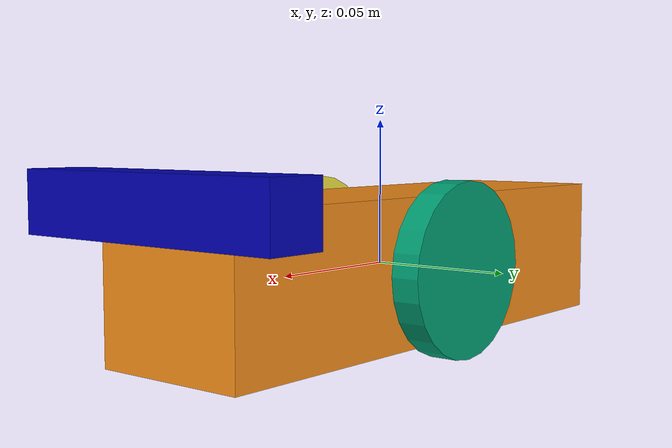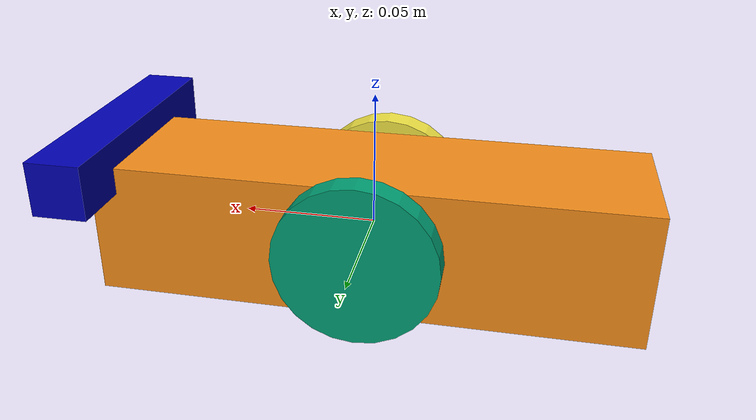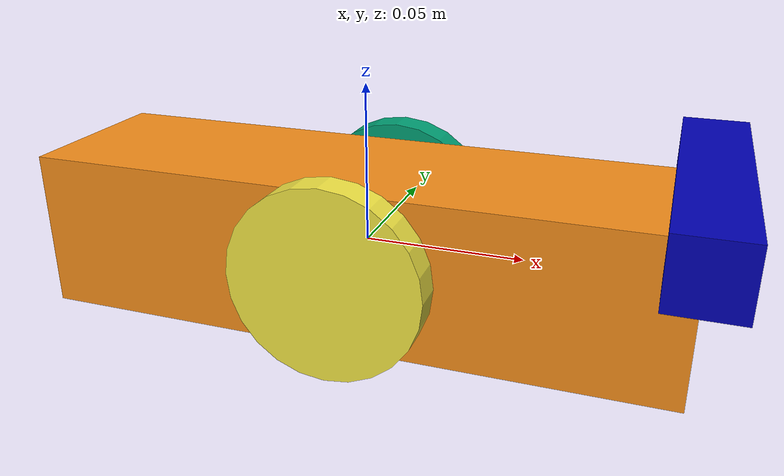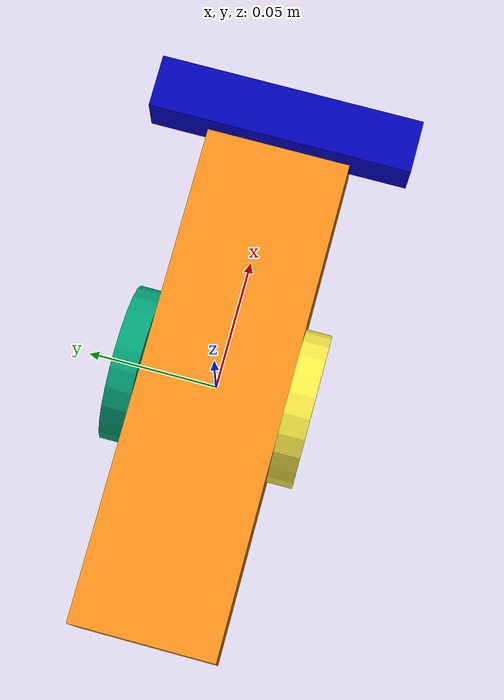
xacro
<?xml version="1.0"?>
<robot
  xmlns:xacro="http://www.ros.org/wiki/xacro"
  name="tread_lightly" >

  <xacro:property name="wheel_size_y" value="0.010" />
  <xacro:property name="wheel_radius" value="0.030" />
  <xacro:property name="wheel_offset_y" value="${bodywidth/2 + wheel_size_y/2}" />
  <xacro:property name="wheel_offset_z_from_base_link" value="${bodyheight/2 - bodyheight/2}" />
  <xacro:property name="wheel_spacing" value="0.1055" />

  <!-- define the base-link origin to lie at floor level, between the drive wheels-->
   <!--main body is a simple box; origin is a center of box-->
  <xacro:property name="bodylen" value="0.200" />
  <xacro:property name="bodywidth" value="0.055" />
  <xacro:property name="bodyheight" value="0.050" />
  <xacro:property name="default_mass" value="1.5" />

  <xacro:property name="M_PI" value="3.1415926535897931" />

  <!--******************* Start Wheel macro ************************-->
  <xacro:macro name="tracked_wheel" params="parent prefix offset_x offset_y offset_z">
    <joint name="${prefix}" type="continuous">
      <origin xyz="${offset_x } ${offset_y} ${offset_z}" rpy="0 0 0" />
      <parent link="${parent}" />
      <child link="${prefix}_wheel_link" />
      <axis xyz="0 1 0" />
      <limit effort="100" velocity="100" />
      <joint_properties damping="0.0" friction="0.0" />
      <anchor xyz="0 0 0" />
    </joint>

    <link name="${prefix}_wheel_link">
      <inertial>
        <mass value="0.01" />
        <origin xyz=" 0 0 0 " />
        <inertia  ixx="0.00012411765597" ixy="0.0" ixz="0.0"
                 iyy="0.00015218160428" iyz="0.0"
                 izz="0.00011763977943" />
      </inertial>

      <collision>
        <origin xyz="0 0 0" rpy="${-M_PI/2} 0 0" />
        <geometry>
          <cylinder radius="${wheel_radius}" length="${wheel_size_y}" />
        </geometry>
      </collision>
      <visual>
        <origin xyz="0 0 0" rpy="${-M_PI/2} 0 0" />
        <geometry>
          <cylinder radius="${wheel_radius}" length="${wheel_size_y}" />
        </geometry>
      </visual>
    </link>

    <gazebo reference="${prefix}_wheel_link" >
      <mu1>1.0</mu1>
      <mu2>1.0</mu2>
      <kp>1000000.0</kp>
      <kd>100.0</kd>
      <minDepth>0.001</minDepth>
    </gazebo>

    <transmission type="pr2_mechanism_model/SimpleTransmission" name="${prefix}_wheel_trans">
      <actuator name="${prefix}_motor_link" />
      <joint name="${prefix}_wheel_joint" />
      <mechanicalReduction>1.0</mechanicalReduction>
      <motorTorqueConstant>1</motorTorqueConstant>
    </transmission>
  </xacro:macro>
  <!--******************* End Wheel macro ************************-->

  <!--******************* Start sentry macro ************************-->
  <xacro:macro name="sentry_macro">
    <link name="base_link">
      <visual>
          <geometry>
              <box size="${bodylen} ${bodywidth} ${bodyheight}"/>
          </geometry>
          <origin xyz="0 0 0" rpy="0 0 0"/>
      </visual>
      <collision>
          <geometry>
              <box size="${bodylen} ${bodywidth} ${bodyheight}"/>
          </geometry>
          <origin xyz="0 0 0" rpy="0 0 0"/>
      </collision>
      <inertial>
          <mass value="${10*default_mass}" />
          <inertia ixx="10" ixy="0" ixz="0"
            iyy="10" iyz="0"
            izz="10" />
      </inertial>
    </link>

	<!-- add a simulated Kinect camera, including visual, collision and inertial properties, and physics simulation-->
	<link name="kinect_link">
      <!-- here is the physical body (case) of the camera-->
      <collision>
          <origin xyz="0 0 0" rpy="0 0 0"/>
          <geometry>
              <box size="0.02 0.1 0.02"/>
          </geometry>
      </collision>

      <visual>
          <origin xyz="0 0 0" rpy="0 0 0" />
          <geometry>
              <box size="0.02 0.1 0.02"/>
          </geometry>
          <material name="camera_case">
              <color rgba="0.0 0.0 0.7 1.0"/>
          </material>
      </visual>

      <inertial>
          <mass value="0.1" />
          <origin xyz="0 0 0" rpy="0 0 0"/>
          <inertia ixx="0.0001" ixy="0" ixz="0" iyy="0.0001" iyz="0" izz="0.0001" />
      </inertial>
  </link>

  <joint name="kinect_joint" type="fixed">
    	<parent link="base_link" />
    	<child link="kinect_link" />
        <origin rpy="0 0 0" xyz="${bodylen/2} 0 ${bodyheight/2}"/>
    </joint>

    <!-- kinect depth frame has a different viewpoint; publish it separately-->
 	<!-- here is the gazebo plug-in to simulate a color camera -->
 	<!--must refer to the above-defined link to place the camera in space-->
    <gazebo reference="base_link">
    <sensor type="depth" name="openni_camera_camera">
        <always_on>1</always_on>
        <visualize>true</visualize>
        <camera>
            <horizontal_fov>1.047</horizontal_fov>
            <image>
                <width>640</width>
                <height>480</height>
                <format>R8G8B8</format>
            </image>
            <depth_camera>

            </depth_camera>
            <clip>
                <near>0.1</near>
                <far>100</far>
            </clip>
        </camera>
      <!--here is the plug-in that does the work of kinect emulation-->
       <plugin name="camera_controller" filename="libgazebo_ros_openni_kinect.so">
            <alwaysOn>true</alwaysOn>
                <updateRate>1.0</updateRate>
                <cameraName>kinect</cameraName>
                <frameName>base_link</frameName>
            <imageTopicName>rgb/image_raw</imageTopicName>
            <depthImageTopicName>depth/image_raw</depthImageTopicName>
            <pointCloudTopicName>depth/points</pointCloudTopicName>
            <cameraInfoTopicName>rgb/camera_info</cameraInfoTopicName>
            <depthImageCameraInfoTopicName>depth/camera_info</depthImageCameraInfoTopicName>
            <pointCloudCutoff>0.4</pointCloudCutoff>
                <hackBaseline>0.07</hackBaseline>
                <distortionK1>0.0</distortionK1>
                <distortionK2>0.0</distortionK2>
                <distortionK3>0.0</distortionK3>
                <distortionT1>0.0</distortionT1>
                <distortionT2>0.0</distortionT2>
            <CxPrime>0.0</CxPrime>
            <Cx>0.0</Cx>
            <Cy>0.0</Cy>
            <focalLength>0.0</focalLength>
            </plugin>
    </sensor>
  </gazebo>

    <!-- left wheel -->
    <xacro:tracked_wheel parent="base_link" prefix="left_joint" offset_x= "${0*wheel_spacing}" offset_y = "${wheel_offset_y}" offset_z = "${wheel_offset_z_from_base_link}"/>

    <!-- right wheel -->
    <xacro:tracked_wheel parent="base_link" prefix="right_joint" offset_x= "${0*wheel_spacing}" offset_y = "-${wheel_offset_y}" offset_z = "${wheel_offset_z_from_base_link}"/>

    <gazebo>
      <plugin name="diffdrive_plugin_multiwheel" filename="libgazebo_ros_diff_drive.so">
        <alwaysOn>true</alwaysOn>
        <updateRate>100.0</updateRate>
        <torque>50</torque>
        <robotNamespace>/</robotNamespace>
        <robotBaseFrame>base_link</robotBaseFrame>
        <topicName>cmd_vel</topicName>
        <commandTopic>/cmd_vel</commandTopic>
        <odometryTopic>odom</odometryTopic>
        <odometryFrame>odom</odometryFrame>
        <broadcastTF>1</broadcastTF>
        <publishWheelTF>true</publishWheelTF>
        <publishWheelJointState>true</publishWheelJointState>
        <publishOdometryTf>1</publishOdometryTf>
        <publishOdometryMsg>1</publishOdometryMsg>
      </plugin>

      <plugin name="p3d_base_controller" filename="libgazebo_ros_p3d.so">
        <alwaysOn>true</alwaysOn>
        <updateRate>50.0</updateRate>
        <bodyName>base_link</bodyName>
        <topicName>ground_truth/state</topicName>
        <gaussianNoise>0.01</gaussianNoise>
        <frameName>world</frameName>
        <xyzOffsets>0 0 0</xyzOffsets>
        <rpyOffsets>0 0 0</rpyOffsets>
      </plugin>
    </gazebo>

    <gazebo reference="base_link">
        <material>Gazebo/Orange</material>
    </gazebo>

  </xacro:macro>
  <!--******************* Start sentry macro ************************-->

  <!-- Run Sentry Macro -->
  <xacro:sentry_macro />
</robot>
